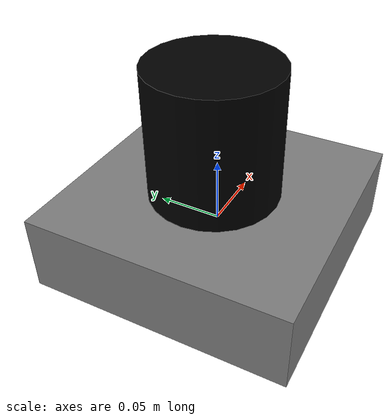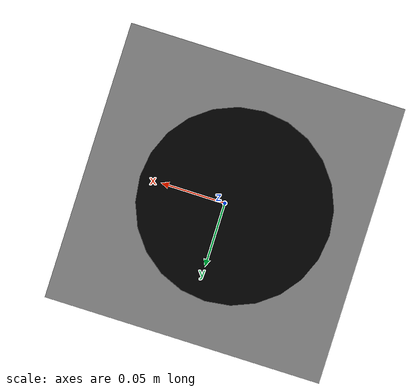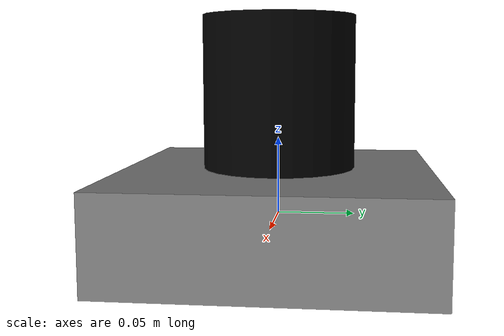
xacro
<robot name="my_robot">
  <link name="base_link">
   <visual>
      <geometry>
        <box size="0.2 0.2 0.06"/>
      </geometry>
      <material name="gray">
        <color rgba="0.5 0.5 0.5 1"/>
      </material>
    </visual>
    <!-- Main link of the robot -->
  </link>

  <link name="base_footprint">
    <!-- Optionally, if needed for specific sensor or footprint requirements -->
  </link>

  <link name="laser_frame">
  <visual>
      <geometry>
        <cylinder length="0.1" radius="0.05"/>
      </geometry>
      <material name="black">
        <color rgba="0.0 0.0 0.0 1.0"/>
      </material>
    </visual>
    <!-- Frame where your LiDAR is mounted -->
  </link>

  <joint name="base_to_footprint" type="fixed">
    <parent link="base_link"/>
    <child link="base_footprint"/>
    <!-- Adjust origin if needed -->
    <origin xyz="0 0 0" rpy="0 0 0"/>
  </joint>

  <joint name="base_to_laser" type="fixed">
    <parent link="base_link"/>
    <child link="laser_frame"/>
    <!-- Adjust origin based on LiDAR mount location -->
    <origin xyz="-0.005 0 0.08" rpy="0 0 0"/>
  </joint>
</robot>
